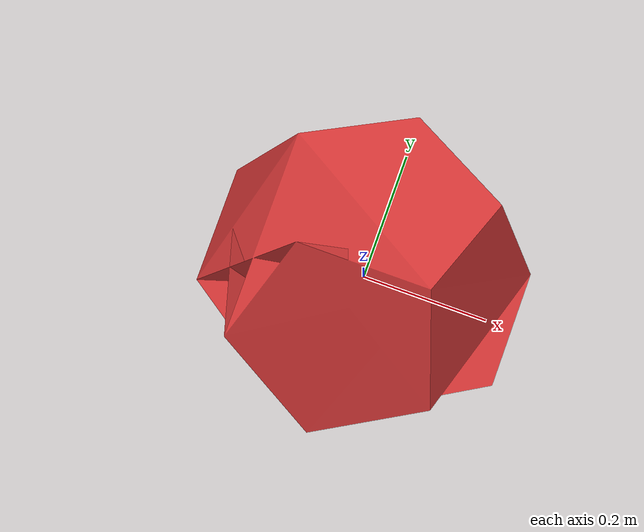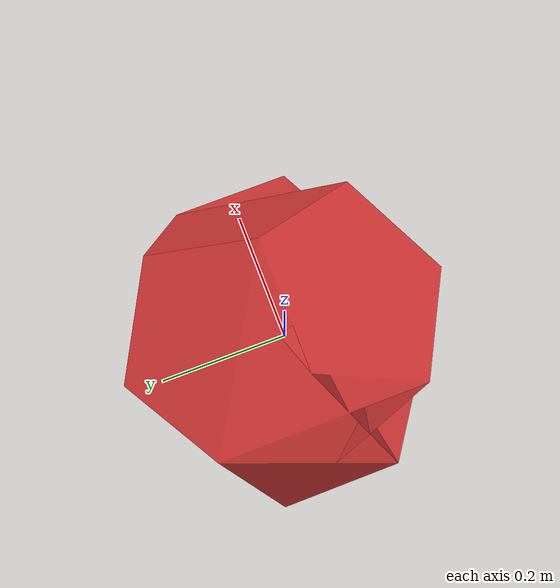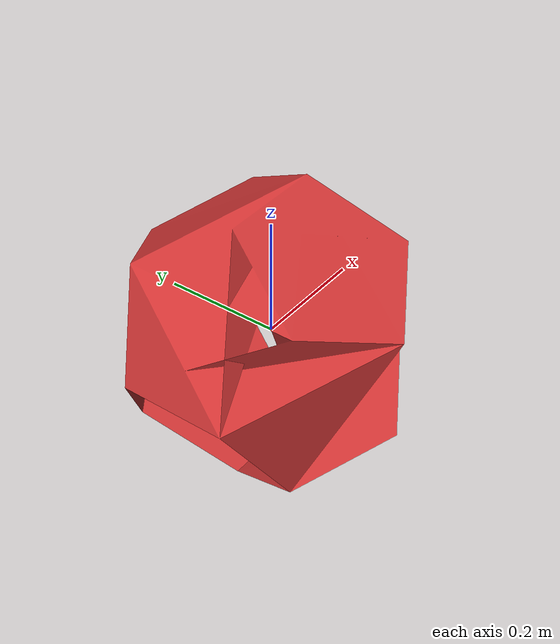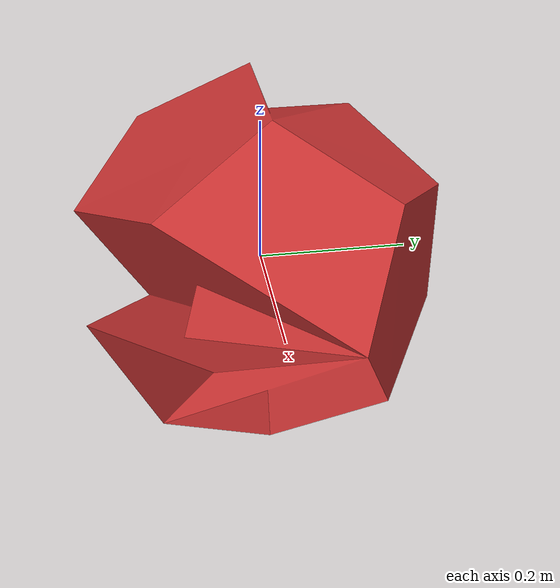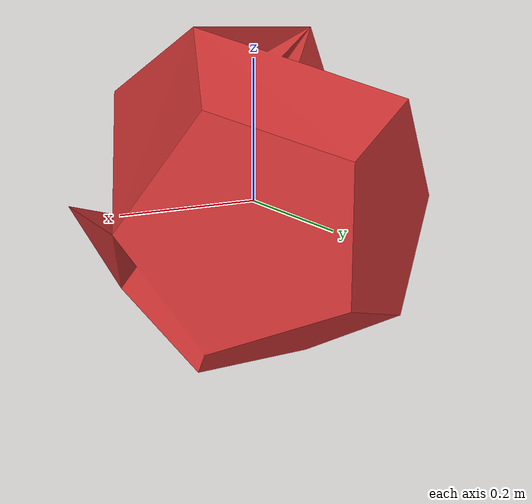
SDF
<?xml version="1.0"?>
<sdf version="1.7">
  <model name="dodecahedron_variant">
    <link name="dodecahedron_variant_link">
      <inertial>
        <mass>2.5</mass>
        <inertia>
          <ixx>0.225</ixx>
          <iyy>0.225</iyy>
          <izz>0.225</izz>
          <ixy>0.0</ixy>
          <ixz>0.0</ixz>
          <iyz>0.0</iyz>
        </inertia>
      </inertial>
      <visual name="dodecahedron_variant_visual">
        <geometry>
          <mesh>
            <uri>dodecahedron.obj</uri>
            <scale>0.15 0.15 0.15</scale>
          </mesh>
        </geometry>
        <material>
          <diffuse>0.8 0.2 0.2 1</diffuse>
          <ambient>0.3 0.1 0.1 1</ambient>
        </material>
      </visual>
    </link>
  </model>
</sdf>
